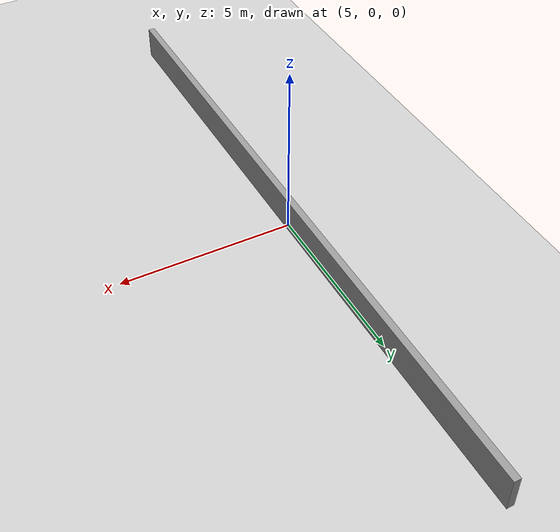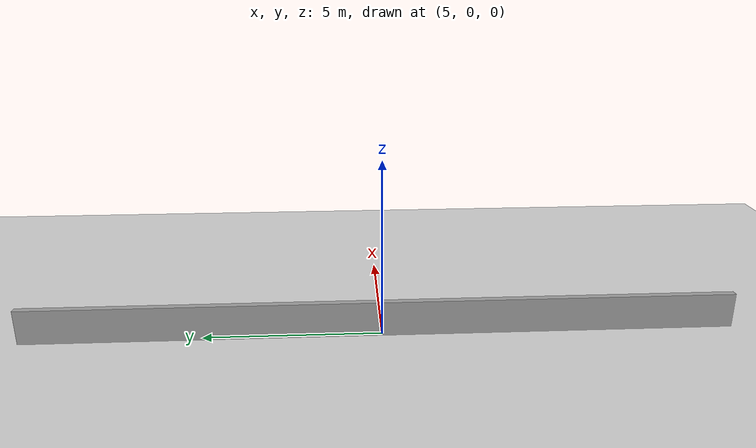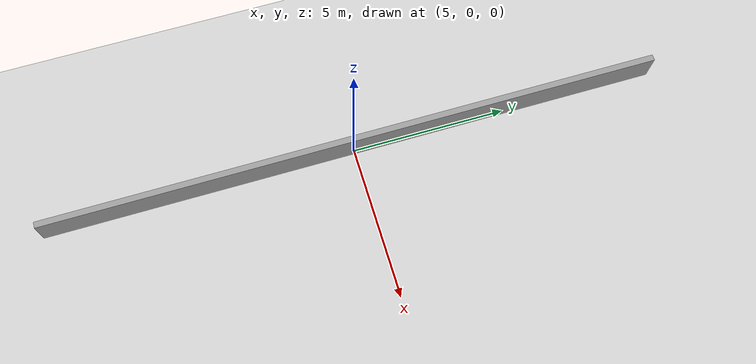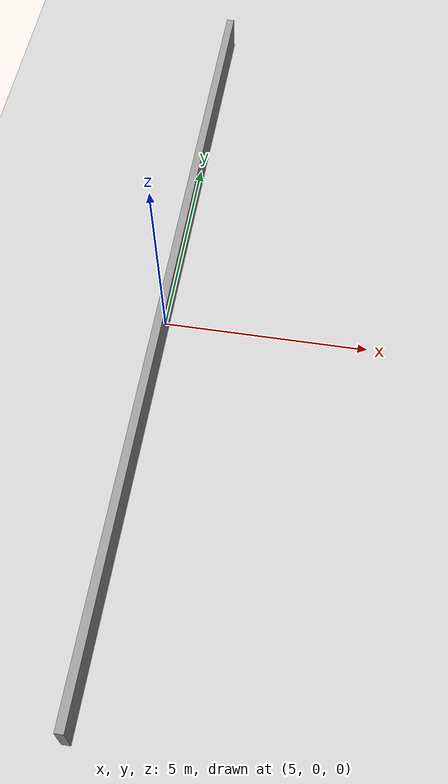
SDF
<?xml version="1.0" ?>
<sdf version="1.6">
  <world name="default">
    <include>
      <uri>model://ground_plane</uri>
    </include>
    <include>
      <uri>model://sun</uri>
    </include>
    <model name="long_wall">
      <static>true</static>
      <link name="link">
        <pose>5 0 0.5 0 0 0</pose> <collision name="collision">
          <geometry>
            <box>
              <size>0.2 20 1</size> </box>
          </geometry>
        </collision>
        <visual name="visual">
          <geometry>
            <box>
              <size>0.2 20 1</size>
            </box>
          </geometry>
          <material>
            <script>
              <uri>file://media/materials/scripts/gazebo.material</uri>
              <name>Gazebo/Grey</name>
            </script>
          </material>
        </visual>
      </link>
    </model>
  </world>
</sdf>
